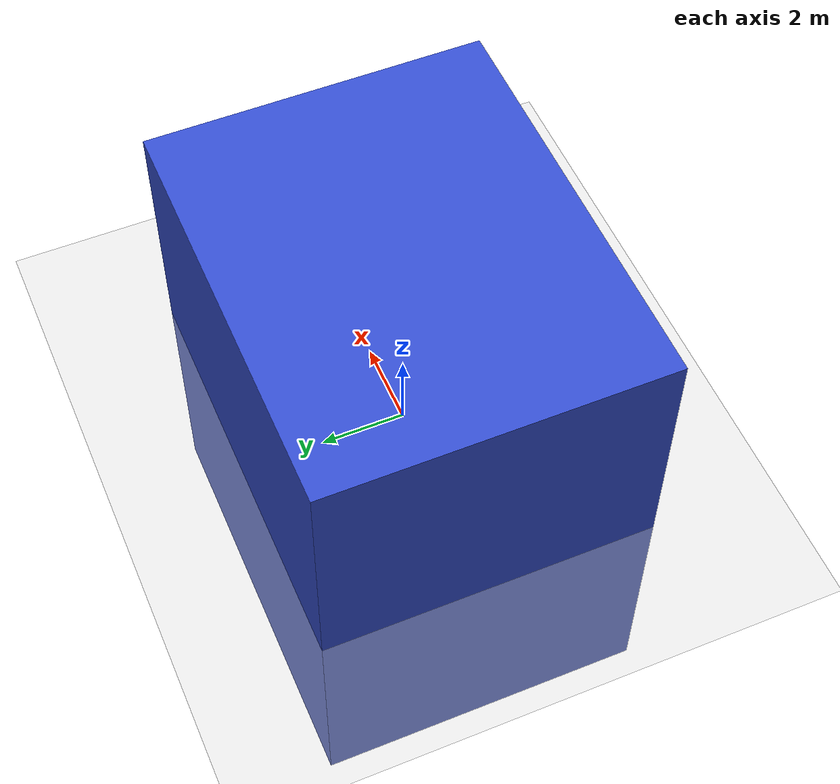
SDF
<?xml version="1.0"?>
<sdf version="1.6">
  <world name="first_world">
    <plugin
      filename="gz-sim-physics-system"
      name="gz::sim::systems::Physics">
    </plugin>

    <plugin
      filename="gz-sim-user-commands-system"
      name="gz::sim::systems::UserCommands">
    </plugin>

    <plugin
      filename="gz-sim-scene-broadcaster-system"
      name="gz::sim::systems::SceneBroadcaster">
    </plugin>

    <light type="directional" name="sun">
        <cast_shadows>true</cast_shadows>
        <pose>0 0 10 0 0 0</pose>
        <diffuse>0.8 0.8 0.8 1</diffuse>
        <specular>0.2 0.2 0.2 1</specular>
        <attenuation>
            <range>1000</range>
            <constant>0.9</constant>
            <linear>0.01</linear>
            <quadratic>0.001</quadratic>
        </attenuation>
        <direction>-0.5 0.1 -0.9</direction>
    </light>

    <model name="ground_plane">
        <static>true</static>
        <link name="link">
            <collision name="collision">
                <geometry>
                    <plane>
                        <normal>0 0 1</normal>
                        <size>100 100</size>
                    </plane>
                </geometry>
                <surface>
                    <friction>
                        <ode>
                            <mu>200</mu>
                            <mu2>100</mu2>
                        </ode>
                    </friction>
                </surface>
            </collision>
            <visual name="visual">
                <cast_shadows>false</cast_shadows>
                <geometry>
                    <plane>
                        <normal>0 0 1</normal>
                        <size>100 100</size>
                    </plane>
                </geometry>
                <material>
                    <script>
                        <uri>file://media/materials/scripts/gazebo.material</uri>
                        <name>Gazebo/Grey</name>
                    </script>
                </material>
            </visual>
        </link>
    </model>

    <model name="dummybot_building">
      <static>1</static>
      <include>
        <pose>0 0 0 0 0 0</pose>
        <uri>model://simple_building</uri>
      </include>
    </model>
    <model name="slider_box">
      <include>
        <pose>2 0 0 0 0 0</pose>
        <uri>model://slider_box</uri>
      </include>
    </model>
  </world>
</sdf>

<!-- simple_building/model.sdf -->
<sdf version="1.9">
	<model name="simple_building">
		<pose>0 0 6 0 0 0</pose>
		<static>true</static>
		<link name="link">
			<collision name="col">
				<geometry>
					<box>
						<size>10 8 12</size>
					</box>
				</geometry>
			</collision>
			<visual name="vis">
				<geometry>
					<box>
						<size>10 8 12</size>
					</box>
				</geometry>
				<material>
					<ambient>0.2 0.3 0.8 1</ambient>
					<diffuse>0.2 0.3 0.8 1</diffuse>
				</material>
			</visual>
		</link>
	</model>
</sdf>

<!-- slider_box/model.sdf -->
<sdf version="1.8">
    <model name="slider_box">
        <link name="box_link">
            <pose>0 0 0.5 0 0 0</pose>
            <inertial>
                <mass>1.0</mass>
                <inertia>
                    <ixx>1</ixx> <ixy>0</ixy> <ixz>0</ixz>
                    <iyy>1</iyy> <iyz>0</iyz> <izz>1</izz>
                </inertia>
            </inertial>
            <visual name="visual">
                <geometry><box><size>1 1 1</size></box></geometry>
                <material><ambient>1 0 0 1</ambient><diffuse>1 0 0 1</diffuse></material>
            </visual>
            <collision name="collision">
                <geometry><box><size>1 1 1</size></box></geometry>
            </collision>
        </link>

        <joint name="slider_joint" type="prismatic">
            <parent>world</parent>
            <child>box_link</child>
            <axis>
                <xyz>1 0 0</xyz> <limit>
                    <lower>-5.0</lower> <upper>5.0</upper>
                </limit>
            </axis>
        </joint>

        <plugin
            filename="gz-sim-joint-position-controller-system"
            name="gz::sim::systems::JointPositionController">
            <joint_name>slider_joint</joint_name>
            <topic>box_pose</topic>
            <p_gain>0.05</p_gain>
            <i_gain>0.001</i_gain>
            <d_gain>0.02</d_gain>
            <i_max>1</i_max>
            <i_min>-1</i_min>
            <cmd_max>0.5</cmd_max>
            <cmd_min>-0.5</cmd_min>
        </plugin>
    </model>
</sdf>
